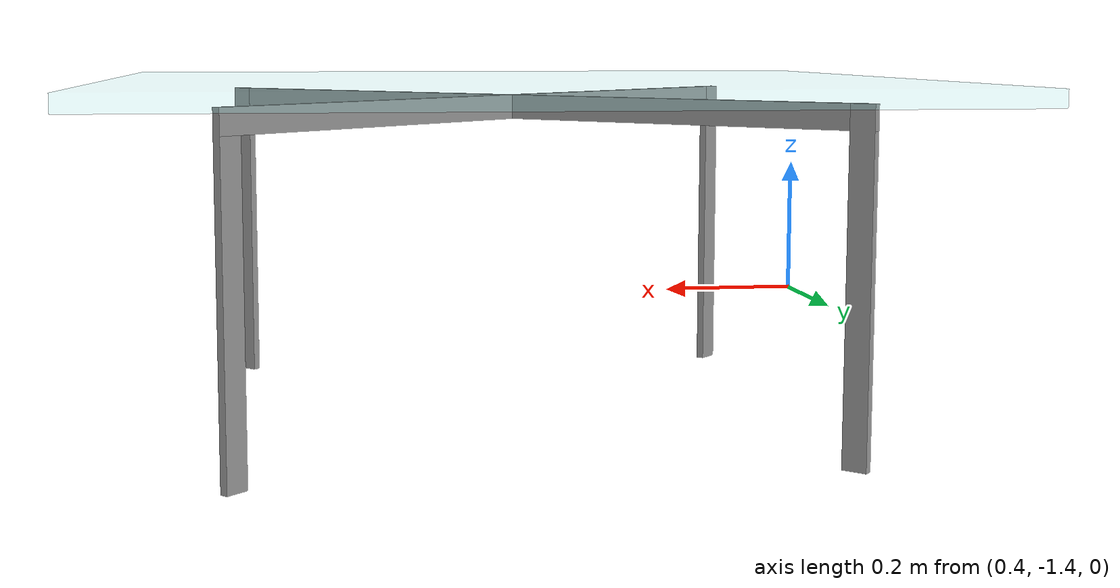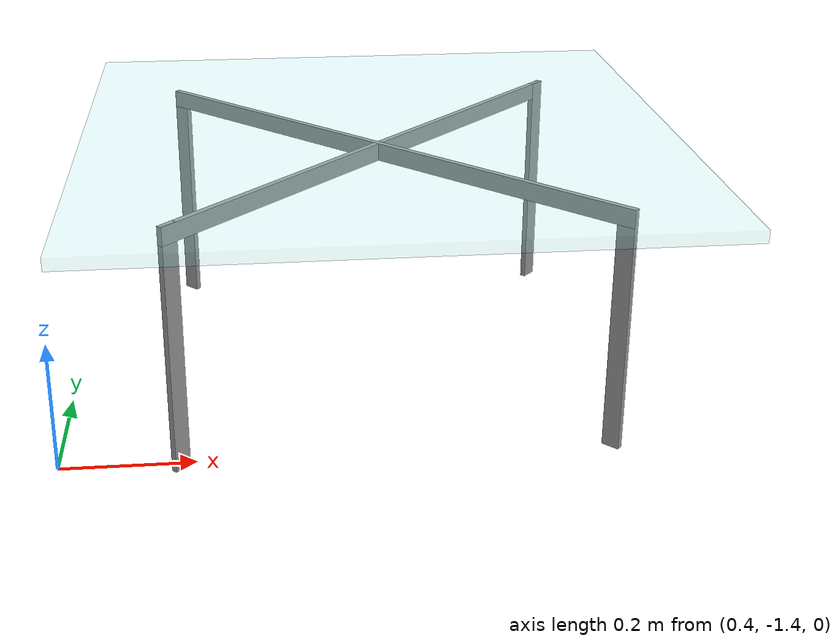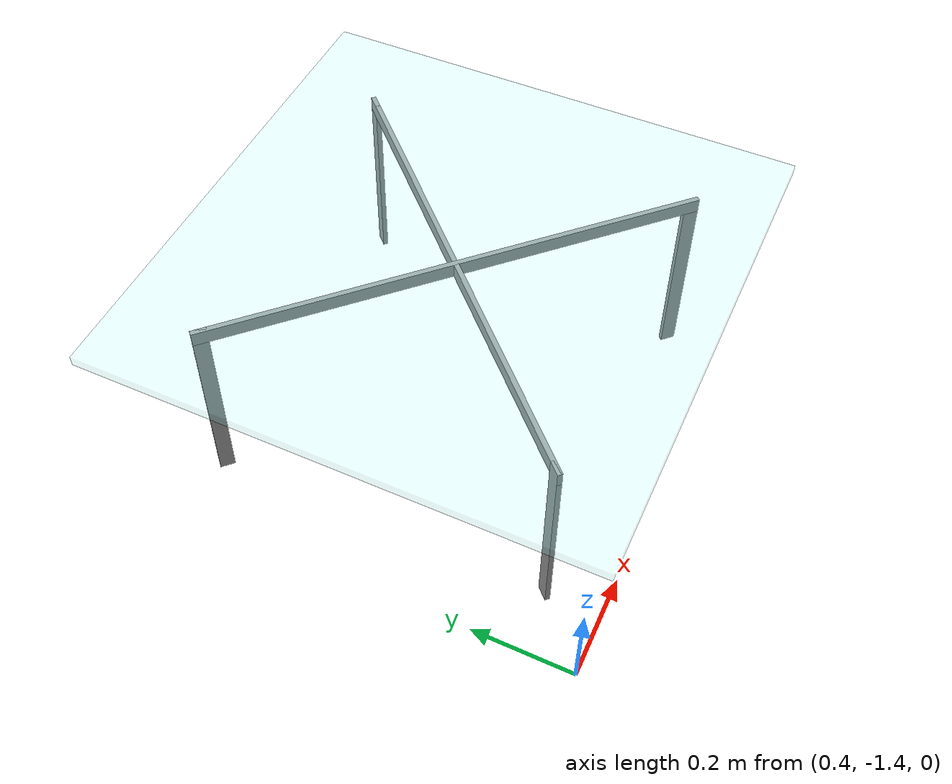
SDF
<?xml version='1.0'?>
<sdf version='1.6'>
  <model name='coffee_table'>
    <link name='link_1'>
      <pose frame=''>1.25379 -1.27559 0.12 0 -0 0.785398</pose>
      <inertial>
        <mass>1</mass>
        <inertia>
          <ixx>0.166667</ixx>
          <ixy>0</ixy>
          <ixz>0</ixz>
          <iyy>0.166667</iyy>
          <iyz>0</iyz>
          <izz>0.166667</izz>
        </inertia>
        <pose frame=''>0 0 0 0 -0 0</pose>
      </inertial>
      <self_collide>0</self_collide>
      <kinematic>0</kinematic>
      <visual name='visual'>
        <pose frame=''>0 0 0 0 -0 0</pose>
        <geometry>
          <box>
            <size>0.01 0.03 0.41</size>
          </box>
        </geometry>
        <material>
          <lighting>1</lighting>
          <script>
            <uri>file://media/materials/scripts/gazebo.material</uri>
            <name>Gazebo/Grey</name>
          </script>
          <shader type='pixel'>
            <normal_map>__default__</normal_map>
          </shader>
          <ambient>0.75 0.75 0.75 1</ambient>
          <diffuse>0.7 0.7 0.7 1</diffuse>
          <specular>0.01 0.01 0.01 1</specular>
          <emissive>0 0 0 1</emissive>
        </material>
        <transparency>0</transparency>
        <cast_shadows>1</cast_shadows>
      </visual>
      <collision name='collision'>
        <laser_retro>0</laser_retro>
        <max_contacts>10</max_contacts>
        <pose frame=''>0 0 0 0 -0 0</pose>
        <geometry>
          <box>
            <size>0.01 0.03 0.41</size>
          </box>
        </geometry>
        <surface>
          <friction>
            <ode>
              <mu>1</mu>
              <mu2>1</mu2>
              <fdir1>0 0 0</fdir1>
              <slip1>0</slip1>
              <slip2>0</slip2>
            </ode>
            <torsional>
              <coefficient>1</coefficient>
              <patch_radius>0</patch_radius>
              <surface_radius>0</surface_radius>
              <use_patch_radius>1</use_patch_radius>
              <ode>
                <slip>0</slip>
              </ode>
            </torsional>
          </friction>
          <bounce>
            <restitution_coefficient>0</restitution_coefficient>
            <threshold>1e+06</threshold>
          </bounce>
          <contact>
            <collide_without_contact>0</collide_without_contact>
            <collide_without_contact_bitmask>1</collide_without_contact_bitmask>
            <collide_bitmask>1</collide_bitmask>
            <ode>
              <soft_cfm>0</soft_cfm>
              <soft_erp>0.2</soft_erp>
              <kp>1e+13</kp>
              <kd>1</kd>
              <max_vel>0.01</max_vel>
              <min_depth>0</min_depth>
            </ode>
            <bullet>
              <split_impulse>1</split_impulse>
              <split_impulse_penetration_threshold>-0.01</split_impulse_penetration_threshold>
              <soft_cfm>0</soft_cfm>
              <soft_erp>0.2</soft_erp>
              <kp>1e+13</kp>
              <kd>1</kd>
            </bullet>
          </contact>
        </surface>
      </collision>
    </link>
    <link name='link_1_clone'>
      <pose frame=''>0.567893 -0.589699 0.12 0 -0 0.785398</pose>
      <inertial>
        <mass>1</mass>
        <inertia>
          <ixx>0.166667</ixx>
          <ixy>0</ixy>
          <ixz>0</ixz>
          <iyy>0.166667</iyy>
          <iyz>0</iyz>
          <izz>0.166667</izz>
        </inertia>
        <pose frame=''>0 0 0 0 -0 0</pose>
      </inertial>
      <self_collide>0</self_collide>
      <kinematic>0</kinematic>
      <visual name='visual'>
        <pose frame=''>0 0 0 0 -0 0</pose>
        <geometry>
          <box>
            <size>0.01 0.03 0.41</size>
          </box>
        </geometry>
        <material>
          <lighting>1</lighting>
          <script>
            <uri>file://media/materials/scripts/gazebo.material</uri>
            <name>Gazebo/Grey</name>
          </script>
          <shader type='pixel'>
            <normal_map>__default__</normal_map>
          </shader>
          <ambient>0.75 0.75 0.75 1</ambient>
          <diffuse>0.7 0.7 0.7 1</diffuse>
          <specular>0.01 0.01 0.01 1</specular>
          <emissive>0 0 0 1</emissive>
        </material>
        <transparency>0</transparency>
        <cast_shadows>1</cast_shadows>
      </visual>
      <collision name='collision'>
        <laser_retro>0</laser_retro>
        <max_contacts>10</max_contacts>
        <pose frame=''>0 0 0 0 -0 0</pose>
        <geometry>
          <box>
            <size>0.01 0.03 0.41</size>
          </box>
        </geometry>
        <surface>
          <friction>
            <ode>
              <mu>1</mu>
              <mu2>1</mu2>
              <fdir1>0 0 0</fdir1>
              <slip1>0</slip1>
              <slip2>0</slip2>
            </ode>
            <torsional>
              <coefficient>1</coefficient>
              <patch_radius>0</patch_radius>
              <surface_radius>0</surface_radius>
              <use_patch_radius>1</use_patch_radius>
              <ode>
                <slip>0</slip>
              </ode>
            </torsional>
          </friction>
          <bounce>
            <restitution_coefficient>0</restitution_coefficient>
            <threshold>1e+06</threshold>
          </bounce>
          <contact>
            <collide_without_contact>0</collide_without_contact>
            <collide_without_contact_bitmask>1</collide_without_contact_bitmask>
            <collide_bitmask>1</collide_bitmask>
            <ode>
              <soft_cfm>0</soft_cfm>
              <soft_erp>0.2</soft_erp>
              <kp>1e+13</kp>
              <kd>1</kd>
              <max_vel>0.01</max_vel>
              <min_depth>0</min_depth>
            </ode>
            <bullet>
              <split_impulse>1</split_impulse>
              <split_impulse_penetration_threshold>-0.01</split_impulse_penetration_threshold>
              <soft_cfm>0</soft_cfm>
              <soft_erp>0.2</soft_erp>
              <kp>1e+13</kp>
              <kd>1</kd>
            </bullet>
          </contact>
        </surface>
      </collision>
    </link>
    <link name='link_1_clone_0'>
      <pose frame=''>1.25379 -0.589699 0.12 0 0 -0.785398</pose>
      <inertial>
        <mass>1</mass>
        <inertia>
          <ixx>0.166667</ixx>
          <ixy>0</ixy>
          <ixz>0</ixz>
          <iyy>0.166667</iyy>
          <iyz>0</iyz>
          <izz>0.166667</izz>
        </inertia>
        <pose frame=''>0 0 0 0 -0 0</pose>
      </inertial>
      <self_collide>0</self_collide>
      <kinematic>0</kinematic>
      <visual name='visual'>
        <pose frame=''>0 0 0 0 -0 0</pose>
        <geometry>
          <box>
            <size>0.01 0.03 0.41</size>
          </box>
        </geometry>
        <material>
          <lighting>1</lighting>
          <script>
            <uri>file://media/materials/scripts/gazebo.material</uri>
            <name>Gazebo/Grey</name>
          </script>
          <shader type='pixel'>
            <normal_map>__default__</normal_map>
          </shader>
          <ambient>0.75 0.75 0.75 1</ambient>
          <diffuse>0.7 0.7 0.7 1</diffuse>
          <specular>0.01 0.01 0.01 1</specular>
          <emissive>0 0 0 1</emissive>
        </material>
        <transparency>0</transparency>
        <cast_shadows>1</cast_shadows>
      </visual>
      <collision name='collision'>
        <laser_retro>0</laser_retro>
        <max_contacts>10</max_contacts>
        <pose frame=''>0 0 0 0 -0 0</pose>
        <geometry>
          <box>
            <size>0.01 0.03 0.41</size>
          </box>
        </geometry>
        <surface>
          <friction>
            <ode>
              <mu>1</mu>
              <mu2>1</mu2>
              <fdir1>0 0 0</fdir1>
              <slip1>0</slip1>
              <slip2>0</slip2>
            </ode>
            <torsional>
              <coefficient>1</coefficient>
              <patch_radius>0</patch_radius>
              <surface_radius>0</surface_radius>
              <use_patch_radius>1</use_patch_radius>
              <ode>
                <slip>0</slip>
              </ode>
            </torsional>
          </friction>
          <bounce>
            <restitution_coefficient>0</restitution_coefficient>
            <threshold>1e+06</threshold>
          </bounce>
          <contact>
            <collide_without_contact>0</collide_without_contact>
            <collide_without_contact_bitmask>1</collide_without_contact_bitmask>
            <collide_bitmask>1</collide_bitmask>
            <ode>
              <soft_cfm>0</soft_cfm>
              <soft_erp>0.2</soft_erp>
              <kp>1e+13</kp>
              <kd>1</kd>
              <max_vel>0.01</max_vel>
              <min_depth>0</min_depth>
            </ode>
            <bullet>
              <split_impulse>1</split_impulse>
              <split_impulse_penetration_threshold>-0.01</split_impulse_penetration_threshold>
              <soft_cfm>0</soft_cfm>
              <soft_erp>0.2</soft_erp>
              <kp>1e+13</kp>
              <kd>1</kd>
            </bullet>
          </contact>
        </surface>
      </collision>
    </link>
    <link name='link_1_clone_0_clone'>
      <pose frame=''>0.567893 -1.27559 0.12 0 0 -0.785398</pose>
      <inertial>
        <mass>1</mass>
        <inertia>
          <ixx>0.166667</ixx>
          <ixy>0</ixy>
          <ixz>0</ixz>
          <iyy>0.166667</iyy>
          <iyz>0</iyz>
          <izz>0.166667</izz>
        </inertia>
        <pose frame=''>0 0 0 0 -0 0</pose>
      </inertial>
      <self_collide>0</self_collide>
      <kinematic>0</kinematic>
      <visual name='visual'>
        <pose frame=''>0 0 0 0 -0 0</pose>
        <geometry>
          <box>
            <size>0.01 0.03 0.41</size>
          </box>
        </geometry>
        <material>
          <lighting>1</lighting>
          <script>
            <uri>file://media/materials/scripts/gazebo.material</uri>
            <name>Gazebo/Grey</name>
          </script>
          <shader type='pixel'>
            <normal_map>__default__</normal_map>
          </shader>
          <ambient>0.75 0.75 0.75 1</ambient>
          <diffuse>0.7 0.7 0.7 1</diffuse>
          <specular>0.01 0.01 0.01 1</specular>
          <emissive>0 0 0 1</emissive>
        </material>
        <transparency>0</transparency>
        <cast_shadows>1</cast_shadows>
      </visual>
      <collision name='collision'>
        <laser_retro>0</laser_retro>
        <max_contacts>10</max_contacts>
        <pose frame=''>0 0 0 0 -0 0</pose>
        <geometry>
          <box>
            <size>0.01 0.03 0.41</size>
          </box>
        </geometry>
        <surface>
          <friction>
            <ode>
              <mu>1</mu>
              <mu2>1</mu2>
              <fdir1>0 0 0</fdir1>
              <slip1>0</slip1>
              <slip2>0</slip2>
            </ode>
            <torsional>
              <coefficient>1</coefficient>
              <patch_radius>0</patch_radius>
              <surface_radius>0</surface_radius>
              <use_patch_radius>1</use_patch_radius>
              <ode>
                <slip>0</slip>
              </ode>
            </torsional>
          </friction>
          <bounce>
            <restitution_coefficient>0</restitution_coefficient>
            <threshold>1e+06</threshold>
          </bounce>
          <contact>
            <collide_without_contact>0</collide_without_contact>
            <collide_without_contact_bitmask>1</collide_without_contact_bitmask>
            <collide_bitmask>1</collide_bitmask>
            <ode>
              <soft_cfm>0</soft_cfm>
              <soft_erp>0.2</soft_erp>
              <kp>1e+13</kp>
              <kd>1</kd>
              <max_vel>0.01</max_vel>
              <min_depth>0</min_depth>
            </ode>
            <bullet>
              <split_impulse>1</split_impulse>
              <split_impulse_penetration_threshold>-0.01</split_impulse_penetration_threshold>
              <soft_cfm>0</soft_cfm>
              <soft_erp>0.2</soft_erp>
              <kp>1e+13</kp>
              <kd>1</kd>
            </bullet>
          </contact>
        </surface>
      </collision>
    </link>
    <link name='link_2'>
      <pose frame=''>0.910839 -0.932646 0.31 0 -0 0.785398</pose>
      <inertial>
        <mass>1</mass>
        <inertia>
          <ixx>0.166667</ixx>
          <ixy>0</ixy>
          <ixz>0</ixz>
          <iyy>0.166667</iyy>
          <iyz>0</iyz>
          <izz>0.166667</izz>
        </inertia>
        <pose frame=''>0 0 0 0 -0 0</pose>
      </inertial>
      <self_collide>0</self_collide>
      <kinematic>0</kinematic>
      <visual name='visual'>
        <pose frame=''>0 0 0 0 -0 0</pose>
        <geometry>
          <box>
            <size>0.01 1 0.03</size>
          </box>
        </geometry>
        <material>
          <lighting>1</lighting>
          <script>
            <uri>file://media/materials/scripts/gazebo.material</uri>
            <name>Gazebo/Grey</name>
          </script>
          <shader type='pixel'>
            <normal_map>__default__</normal_map>
          </shader>
          <ambient>0.75 0.75 0.75 1</ambient>
          <diffuse>0.7 0.7 0.7 1</diffuse>
          <specular>0.01 0.01 0.01 1</specular>
          <emissive>0 0 0 1</emissive>
        </material>
        <transparency>0</transparency>
        <cast_shadows>1</cast_shadows>
      </visual>
      <collision name='collision'>
        <laser_retro>0</laser_retro>
        <max_contacts>10</max_contacts>
        <pose frame=''>0 0 0 0 -0 0</pose>
        <geometry>
          <box>
            <size>0.01 1 0.03</size>
          </box>
        </geometry>
        <surface>
          <friction>
            <ode>
              <mu>1</mu>
              <mu2>1</mu2>
              <fdir1>0 0 0</fdir1>
              <slip1>0</slip1>
              <slip2>0</slip2>
            </ode>
            <torsional>
              <coefficient>1</coefficient>
              <patch_radius>0</patch_radius>
              <surface_radius>0</surface_radius>
              <use_patch_radius>1</use_patch_radius>
              <ode>
                <slip>0</slip>
              </ode>
            </torsional>
          </friction>
          <bounce>
            <restitution_coefficient>0</restitution_coefficient>
            <threshold>1e+06</threshold>
          </bounce>
          <contact>
            <collide_without_contact>0</collide_without_contact>
            <collide_without_contact_bitmask>1</collide_without_contact_bitmask>
            <collide_bitmask>1</collide_bitmask>
            <ode>
              <soft_cfm>0</soft_cfm>
              <soft_erp>0.2</soft_erp>
              <kp>1e+13</kp>
              <kd>1</kd>
              <max_vel>0.01</max_vel>
              <min_depth>0</min_depth>
            </ode>
            <bullet>
              <split_impulse>1</split_impulse>
              <split_impulse_penetration_threshold>-0.01</split_impulse_penetration_threshold>
              <soft_cfm>0</soft_cfm>
              <soft_erp>0.2</soft_erp>
              <kp>1e+13</kp>
              <kd>1</kd>
            </bullet>
          </contact>
        </surface>
      </collision>
    </link>
    <link name='link_2_clone'>
      <pose frame=''>0.910839 -0.932646 0.31 0 0 -0.785398</pose>
      <inertial>
        <mass>1</mass>
        <inertia>
          <ixx>0.166667</ixx>
          <ixy>0</ixy>
          <ixz>0</ixz>
          <iyy>0.166667</iyy>
          <iyz>0</iyz>
          <izz>0.166667</izz>
        </inertia>
        <pose frame=''>0 0 0 0 -0 0</pose>
      </inertial>
      <self_collide>0</self_collide>
      <kinematic>0</kinematic>
      <visual name='visual'>
        <pose frame=''>0 0 0 0 -0 0</pose>
        <geometry>
          <box>
            <size>0.01 1 0.03</size>
          </box>
        </geometry>
        <material>
          <lighting>1</lighting>
          <script>
            <uri>file://media/materials/scripts/gazebo.material</uri>
            <name>Gazebo/Grey</name>
          </script>
          <shader type='pixel'>
            <normal_map>__default__</normal_map>
          </shader>
          <ambient>0.75 0.75 0.75 1</ambient>
          <diffuse>0.7 0.7 0.7 1</diffuse>
          <specular>0.01 0.01 0.01 1</specular>
          <emissive>0 0 0 1</emissive>
        </material>
        <transparency>0</transparency>
        <cast_shadows>1</cast_shadows>
      </visual>
      <collision name='collision'>
        <laser_retro>0</laser_retro>
        <max_contacts>10</max_contacts>
        <pose frame=''>0 0 0 0 -0 0</pose>
        <geometry>
          <box>
            <size>0.01 1 0.03</size>
          </box>
        </geometry>
        <surface>
          <friction>
            <ode>
              <mu>1</mu>
              <mu2>1</mu2>
              <fdir1>0 0 0</fdir1>
              <slip1>0</slip1>
              <slip2>0</slip2>
            </ode>
            <torsional>
              <coefficient>1</coefficient>
              <patch_radius>0</patch_radius>
              <surface_radius>0</surface_radius>
              <use_patch_radius>1</use_patch_radius>
              <ode>
                <slip>0</slip>
              </ode>
            </torsional>
          </friction>
          <bounce>
            <restitution_coefficient>0</restitution_coefficient>
            <threshold>1e+06</threshold>
          </bounce>
          <contact>
            <collide_without_contact>0</collide_without_contact>
            <collide_without_contact_bitmask>1</collide_without_contact_bitmask>
            <collide_bitmask>1</collide_bitmask>
            <ode>
              <soft_cfm>0</soft_cfm>
              <soft_erp>0.2</soft_erp>
              <kp>1e+13</kp>
              <kd>1</kd>
              <max_vel>0.01</max_vel>
              <min_depth>0</min_depth>
            </ode>
            <bullet>
              <split_impulse>1</split_impulse>
              <split_impulse_penetration_threshold>-0.01</split_impulse_penetration_threshold>
              <soft_cfm>0</soft_cfm>
              <soft_erp>0.2</soft_erp>
              <kp>1e+13</kp>
              <kd>1</kd>
            </bullet>
          </contact>
        </surface>
      </collision>
    </link>
    <link name='link_4'>
      <pose frame=''>0.910839 -0.932646 0.335 0 -0 0</pose>
      <inertial>
        <mass>1</mass>
        <inertia>
          <ixx>0.166667</ixx>
          <ixy>0</ixy>
          <ixz>0</ixz>
          <iyy>0.166667</iyy>
          <iyz>0</iyz>
          <izz>0.166667</izz>
        </inertia>
        <pose frame=''>0 0 0 0 -0 0</pose>
      </inertial>
      <self_collide>0</self_collide>
      <kinematic>0</kinematic>
      <visual name='visual'>
        <pose frame=''>0 0 0 0 -0 0</pose>
        <geometry>
          <box>
            <size>1 1 0.02</size>
          </box>
        </geometry>
        <material>
          <lighting>1</lighting>
          <script>
            <uri>file://media/materials/scripts/gazebo.material</uri>
            <name>Gazebo/Grey</name>
          </script>
          <shader type='pixel'>
            <normal_map>__default__</normal_map>
          </shader>
          <ambient>0.6 1 1 1</ambient>
          <diffuse>0.7 0.7 0.7 1</diffuse>
          <specular>0.01 0.01 0.01 1</specular>
          <emissive>0 0 0 1</emissive>
        </material>
        <transparency>0.85</transparency>
        <cast_shadows>1</cast_shadows>
      </visual>
      <collision name='collision'>
        <laser_retro>0</laser_retro>
        <max_contacts>10</max_contacts>
        <pose frame=''>0 0 0 0 -0 0</pose>
        <geometry>
          <box>
            <size>1 1 0.02</size>
          </box>
        </geometry>
        <surface>
          <friction>
            <ode>
              <mu>1</mu>
              <mu2>1</mu2>
              <fdir1>0 0 0</fdir1>
              <slip1>0</slip1>
              <slip2>0</slip2>
            </ode>
            <torsional>
              <coefficient>1</coefficient>
              <patch_radius>0</patch_radius>
              <surface_radius>0</surface_radius>
              <use_patch_radius>1</use_patch_radius>
              <ode>
                <slip>0</slip>
              </ode>
            </torsional>
          </friction>
          <bounce>
            <restitution_coefficient>0</restitution_coefficient>
            <threshold>1e+06</threshold>
          </bounce>
          <contact>
            <collide_without_contact>0</collide_without_contact>
            <collide_without_contact_bitmask>1</collide_without_contact_bitmask>
            <collide_bitmask>1</collide_bitmask>
            <ode>
              <soft_cfm>0</soft_cfm>
              <soft_erp>0.2</soft_erp>
              <kp>1e+13</kp>
              <kd>1</kd>
              <max_vel>0.01</max_vel>
              <min_depth>0</min_depth>
            </ode>
            <bullet>
              <split_impulse>1</split_impulse>
              <split_impulse_penetration_threshold>-0.01</split_impulse_penetration_threshold>
              <soft_cfm>0</soft_cfm>
              <soft_erp>0.2</soft_erp>
              <kp>1e+13</kp>
              <kd>1</kd>
            </bullet>
          </contact>
        </surface>
      </collision>
    </link>
    <joint name='link_2_JOINT_0_0' type='fixed'>
      <parent>link_2</parent>
      <child>link_4</child>
      <pose frame=''>0 0 0 0 -0 0</pose>
      <physics>
        <ode>
          <limit>
            <cfm>0</cfm>
            <erp>0.2</erp>
          </limit>
          <suspension>
            <cfm>0</cfm>
            <erp>0.2</erp>
          </suspension>
        </ode>
      </physics>
    </joint>
    <joint name='link_2_JOINT_0' type='fixed'>
      <parent>link_2</parent>
      <child>link_1</child>
      <pose frame=''>0 0 0 0 -0 0</pose>
      <physics>
        <ode>
          <limit>
            <cfm>0</cfm>
            <erp>0.2</erp>
          </limit>
          <suspension>
            <cfm>0</cfm>
            <erp>0.2</erp>
          </suspension>
        </ode>
      </physics>
    </joint>
    <joint name='link_2_JOINT_1_0' type='fixed'>
      <parent>link_2</parent>
      <child>link_2_clone</child>
      <pose frame=''>0 0 0 0 -0 0</pose>
      <physics>
        <ode>
          <limit>
            <cfm>0</cfm>
            <erp>0.2</erp>
          </limit>
          <suspension>
            <cfm>0</cfm>
            <erp>0.2</erp>
          </suspension>
        </ode>
      </physics>
    </joint>
    <joint name='link_2_JOINT_1' type='fixed'>
      <parent>link_2</parent>
      <child>link_1_clone</child>
      <pose frame=''>0 0 0 0 -0 0</pose>
      <physics>
        <ode>
          <limit>
            <cfm>0</cfm>
            <erp>0.2</erp>
          </limit>
          <suspension>
            <cfm>0</cfm>
            <erp>0.2</erp>
          </suspension>
        </ode>
      </physics>
    </joint>
    <joint name='link_2_clone_JOINT_0' type='fixed'>
      <parent>link_2_clone</parent>
      <child>link_4</child>
      <pose frame=''>0 0 0 0 -0 0</pose>
      <physics>
        <ode>
          <limit>
            <cfm>0</cfm>
            <erp>0.2</erp>
          </limit>
          <suspension>
            <cfm>0</cfm>
            <erp>0.2</erp>
          </suspension>
        </ode>
      </physics>
    </joint>
    <joint name='link_2_clone_JOINT_2' type='fixed'>
      <parent>link_2_clone</parent>
      <child>link_1_clone_0_clone</child>
      <pose frame=''>0 0 0 0 -0 0</pose>
      <physics>
        <ode>
          <limit>
            <cfm>0</cfm>
            <erp>0.2</erp>
          </limit>
          <suspension>
            <cfm>0</cfm>
            <erp>0.2</erp>
          </suspension>
        </ode>
      </physics>
    </joint>
    <joint name='link_2_clone_JOINT_3' type='fixed'>
      <parent>link_2_clone</parent>
      <child>link_1_clone_0</child>
      <pose frame=''>0 0 0 0 -0 0</pose>
      <physics>
        <ode>
          <limit>
            <cfm>0</cfm>
            <erp>0.2</erp>
          </limit>
          <suspension>
            <cfm>0</cfm>
            <erp>0.2</erp>
          </suspension>
        </ode>
      </physics>
    </joint>
    <static>0</static>
    <allow_auto_disable>1</allow_auto_disable>
  </model>
</sdf>
